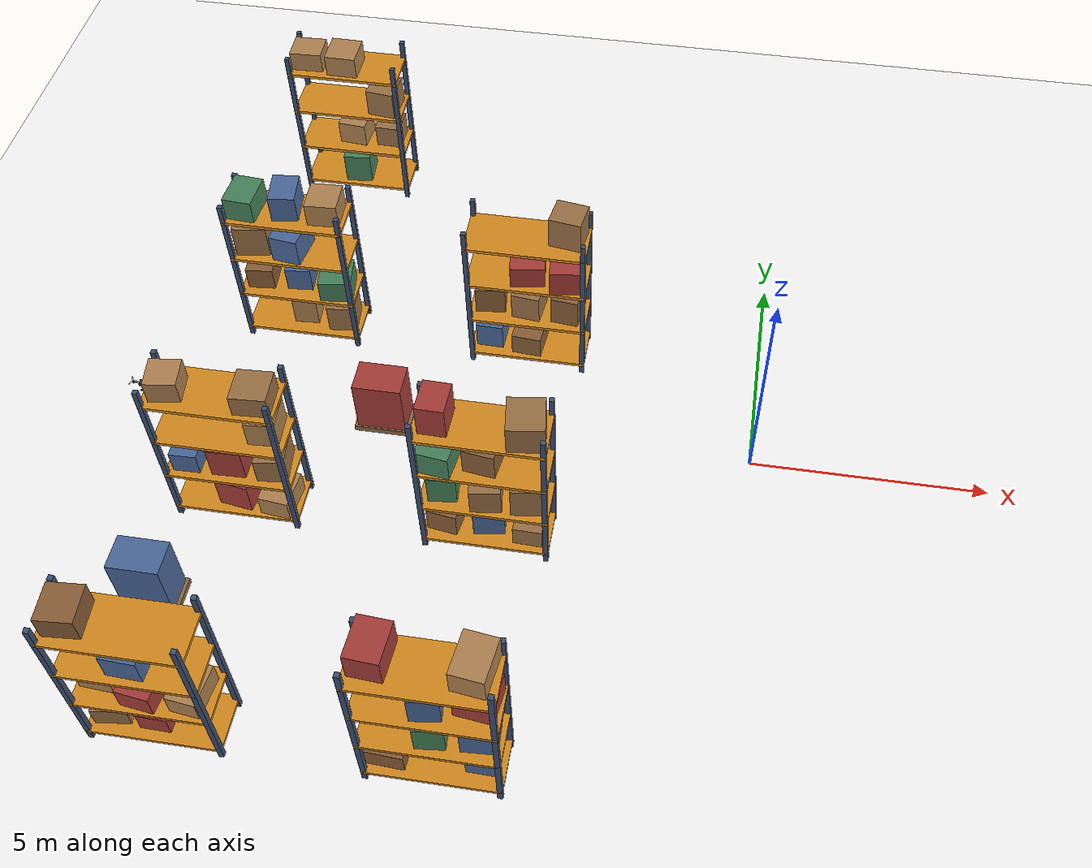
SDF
<sdf version="1.9">
 <world name="warehouse">
  <model name="ground_plane">
   <static>true</static>
   <link name="link">
    <collision name="collision">
     <geometry><plane><normal>0 0 1</normal><size>200 200</size></plane></geometry>
     <surface><friction><ode><mu>1.0</mu><mu2>1.0</mu2></ode></friction></surface>
    </collision>
    <visual name="visual">
     <geometry><plane><normal>0 0 1</normal><size>200 200</size></plane></geometry>
     <material>
      <ambient>0.5 0.5 0.5 1</ambient>
      <diffuse>1 1 1 1</diffuse>
      <pbr>
       <metal>
        <albedo_map>model://surfaces/materials/textures/floor.png</albedo_map>
        <metalness>0</metalness>
        <roughness>0.9</roughness>
       </metal>
      </pbr>
     </material>
    </visual>
   </link>
  </model>
  <model name="rack_0_0">
   <static>true</static>
   <pose>-10.4 -7.5 0 0 0 0</pose>
   <link name="link">
    <visual name="upright_0_v">
     <pose>-1.25 -0.5 2 0 0 0</pose>
     <geometry><box><size>0.1 0.1 4</size></box></geometry>
     <material><ambient>0.125 0.16 0.225 1</ambient><diffuse>0.25 0.32 0.45 1</diffuse></material>
    </visual>
    <collision name="upright_0_c">
     <pose>-1.25 -0.5 2 0 0 0</pose>
     <geometry><box><size>0.1 0.1 4</size></box></geometry>
    </collision>
    <visual name="upright_1_v">
     <pose>-1.25 0.5 2 0 0 0</pose>
     <geometry><box><size>0.1 0.1 4</size></box></geometry>
     <material><ambient>0.125 0.16 0.225 1</ambient><diffuse>0.25 0.32 0.45 1</diffuse></material>
    </visual>
    <collision name="upright_1_c">
     <pose>-1.25 0.5 2 0 0 0</pose>
     <geometry><box><size>0.1 0.1 4</size></box></geometry>
    </collision>
    <visual name="upright_2_v">
     <pose>1.25 -0.5 2 0 0 0</pose>
     <geometry><box><size>0.1 0.1 4</size></box></geometry>
     <material><ambient>0.125 0.16 0.225 1</ambient><diffuse>0.25 0.32 0.45 1</diffuse></material>
    </visual>
    <collision name="upright_2_c">
     <pose>1.25 -0.5 2 0 0 0</pose>
     <geometry><box><size>0.1 0.1 4</size></box></geometry>
    </collision>
    <visual name="upright_3_v">
     <pose>1.25 0.5 2 0 0 0</pose>
     <geometry><box><size>0.1 0.1 4</size></box></geometry>
     <material><ambient>0.125 0.16 0.225 1</ambient><diffuse>0.25 0.32 0.45 1</diffuse></material>
    </visual>
    <collision name="upright_3_c">
     <pose>1.25 0.5 2 0 0 0</pose>
     <geometry><box><size>0.1 0.1 4</size></box></geometry>
    </collision>
    <visual name="deck_0_v">
     <pose>0 0 0.25 0 0 0</pose>
     <geometry><box><size>2.6 1.1 0.07</size></box></geometry>
     <material><ambient>0.425 0.275 0.06 1</ambient><diffuse>0.85 0.55 0.12 1</diffuse></material>
    </visual>
    <collision name="deck_0_c">
     <pose>0 0 0.25 0 0 0</pose>
     <geometry><box><size>2.6 1.1 0.07</size></box></geometry>
    </collision>
    <visual name="cargo_0_0_v">
     <pose>-0.8667 0.007176 0.5227 0 0 0.1229</pose>
     <geometry><box><size>0.6802 0.6914 0.4754</size></box></geometry>
     <material><ambient>0.31 0.225 0.14 1</ambient><diffuse>0.62 0.45 0.28 1</diffuse></material>
    </visual>
    <collision name="cargo_0_0_c">
     <pose>-0.8667 0.007176 0.5227 0 0 0.1229</pose>
     <geometry><box><size>0.6802 0.6914 0.4754</size></box></geometry>
    </collision>
    <visual name="cargo_0_1_v">
     <pose>0 -0.01637 0.525 0 0 -0.02264</pose>
     <geometry><box><size>0.5929 0.6602 0.4801</size></box></geometry>
     <material><ambient>0.33 0.12 0.11 1</ambient><diffuse>0.66 0.24 0.22 1</diffuse></material>
    </visual>
    <collision name="cargo_0_1_c">
     <pose>0 -0.01637 0.525 0 0 -0.02264</pose>
     <geometry><box><size>0.5929 0.6602 0.4801</size></box></geometry>
    </collision>
    <visual name="deck_1_v">
     <pose>0 0 1.35 0 0 0</pose>
     <geometry><box><size>2.6 1.1 0.07</size></box></geometry>
     <material><ambient>0.425 0.275 0.06 1</ambient><diffuse>0.85 0.55 0.12 1</diffuse></material>
    </visual>
    <collision name="deck_1_c">
     <pose>0 0 1.35 0 0 0</pose>
     <geometry><box><size>2.6 1.1 0.07</size></box></geometry>
    </collision>
    <visual name="cargo_1_0_v">
     <pose>-0.8667 0.09525 1.679 0 0 -0.06312</pose>
     <geometry><box><size>0.6654 0.6116 0.5888</size></box></geometry>
     <material><ambient>0.35 0.26 0.16 1</ambient><diffuse>0.7 0.52 0.32 1</diffuse></material>
    </visual>
    <collision name="cargo_1_0_c">
     <pose>-0.8667 0.09525 1.679 0 0 -0.06312</pose>
     <geometry><box><size>0.6654 0.6116 0.5888</size></box></geometry>
    </collision>
    <visual name="cargo_1_2_v">
     <pose>0.8667 -0.0383 1.631 0 0 -0.1191</pose>
     <geometry><box><size>0.5789 0.804 0.4912</size></box></geometry>
     <material><ambient>0.35 0.26 0.16 1</ambient><diffuse>0.7 0.52 0.32 1</diffuse></material>
    </visual>
    <collision name="cargo_1_2_c">
     <pose>0.8667 -0.0383 1.631 0 0 -0.1191</pose>
     <geometry><box><size>0.5789 0.804 0.4912</size></box></geometry>
    </collision>
    <visual name="cargo_1_1_v">
     <pose>0 -0.08051 1.643 0 0 -0.1321</pose>
     <geometry><box><size>0.6642 0.778 0.5158</size></box></geometry>
     <material><ambient>0.33 0.12 0.11 1</ambient><diffuse>0.66 0.24 0.22 1</diffuse></material>
    </visual>
    <collision name="cargo_1_1_c">
     <pose>0 -0.08051 1.643 0 0 -0.1321</pose>
     <geometry><box><size>0.6642 0.778 0.5158</size></box></geometry>
    </collision>
    <visual name="deck_2_v">
     <pose>0 0 2.45 0 0 0</pose>
     <geometry><box><size>2.6 1.1 0.07</size></box></geometry>
     <material><ambient>0.425 0.275 0.06 1</ambient><diffuse>0.85 0.55 0.12 1</diffuse></material>
    </visual>
    <collision name="deck_2_c">
     <pose>0 0 2.45 0 0 0</pose>
     <geometry><box><size>2.6 1.1 0.07</size></box></geometry>
    </collision>
    <visual name="cargo_2_1_v">
     <pose>0 -0.03717 2.785 0 0 -0.04153</pose>
     <geometry><box><size>0.6861 0.7464 0.5997</size></box></geometry>
     <material><ambient>0.15 0.21 0.31 1</ambient><diffuse>0.3 0.42 0.62 1</diffuse></material>
    </visual>
    <collision name="cargo_2_1_c">
     <pose>0 -0.03717 2.785 0 0 -0.04153</pose>
     <geometry><box><size>0.6861 0.7464 0.5997</size></box></geometry>
    </collision>
    <visual name="deck_3_v">
     <pose>0 0 3.55 0 0 0</pose>
     <geometry><box><size>2.6 1.1 0.07</size></box></geometry>
     <material><ambient>0.425 0.275 0.06 1</ambient><diffuse>0.85 0.55 0.12 1</diffuse></material>
    </visual>
    <collision name="deck_3_c">
     <pose>0 0 3.55 0 0 0</pose>
     <geometry><box><size>2.6 1.1 0.07</size></box></geometry>
    </collision>
    <visual name="cargo_3_0_v">
     <pose>-0.8667 0.01488 3.853 0 0 0.06883</pose>
     <geometry><box><size>0.6898 0.7313 0.5354</size></box></geometry>
     <material><ambient>0.275 0.19 0.11 1</ambient><diffuse>0.55 0.38 0.22 1</diffuse></material>
    </visual>
    <collision name="cargo_3_0_c">
     <pose>-0.8667 0.01488 3.853 0 0 0.06883</pose>
     <geometry><box><size>0.6898 0.7313 0.5354</size></box></geometry>
    </collision>
   </link>
  </model>
  <model name="rack_0_1">
   <static>true</static>
   <pose>-5.2 -7.5 0 0 0 0</pose>
   <link name="link">
    <visual name="upright_0_v">
     <pose>-1.25 -0.5 2 0 0 0</pose>
     <geometry><box><size>0.1 0.1 4</size></box></geometry>
     <material><ambient>0.125 0.16 0.225 1</ambient><diffuse>0.25 0.32 0.45 1</diffuse></material>
    </visual>
    <collision name="upright_0_c">
     <pose>-1.25 -0.5 2 0 0 0</pose>
     <geometry><box><size>0.1 0.1 4</size></box></geometry>
    </collision>
    <visual name="upright_1_v">
     <pose>-1.25 0.5 2 0 0 0</pose>
     <geometry><box><size>0.1 0.1 4</size></box></geometry>
     <material><ambient>0.125 0.16 0.225 1</ambient><diffuse>0.25 0.32 0.45 1</diffuse></material>
    </visual>
    <collision name="upright_1_c">
     <pose>-1.25 0.5 2 0 0 0</pose>
     <geometry><box><size>0.1 0.1 4</size></box></geometry>
    </collision>
    <visual name="upright_2_v">
     <pose>1.25 -0.5 2 0 0 0</pose>
     <geometry><box><size>0.1 0.1 4</size></box></geometry>
     <material><ambient>0.125 0.16 0.225 1</ambient><diffuse>0.25 0.32 0.45 1</diffuse></material>
    </visual>
    <collision name="upright_2_c">
     <pose>1.25 -0.5 2 0 0 0</pose>
     <geometry><box><size>0.1 0.1 4</size></box></geometry>
    </collision>
    <visual name="upright_3_v">
     <pose>1.25 0.5 2 0 0 0</pose>
     <geometry><box><size>0.1 0.1 4</size></box></geometry>
     <material><ambient>0.125 0.16 0.225 1</ambient><diffuse>0.25 0.32 0.45 1</diffuse></material>
    </visual>
    <collision name="upright_3_c">
     <pose>1.25 0.5 2 0 0 0</pose>
     <geometry><box><size>0.1 0.1 4</size></box></geometry>
    </collision>
    <visual name="deck_0_v">
     <pose>0 0 0.25 0 0 0</pose>
     <geometry><box><size>2.6 1.1 0.07</size></box></geometry>
     <material><ambient>0.425 0.275 0.06 1</ambient><diffuse>0.85 0.55 0.12 1</diffuse></material>
    </visual>
    <collision name="deck_0_c">
     <pose>0 0 0.25 0 0 0</pose>
     <geometry><box><size>2.6 1.1 0.07</size></box></geometry>
    </collision>
    <visual name="cargo_0_2_v">
     <pose>0.8667 0.05143 0.5832 0 0 -0.02349</pose>
     <geometry><box><size>0.5736 0.638 0.5963</size></box></geometry>
     <material><ambient>0.15 0.21 0.31 1</ambient><diffuse>0.3 0.42 0.62 1</diffuse></material>
    </visual>
    <collision name="cargo_0_2_c">
     <pose>0.8667 0.05143 0.5832 0 0 -0.02349</pose>
     <geometry><box><size>0.5736 0.638 0.5963</size></box></geometry>
    </collision>
    <visual name="cargo_0_0_v">
     <pose>-0.8667 0.01162 0.5236 0 0 -0.04796</pose>
     <geometry><box><size>0.7424 0.7973 0.4772</size></box></geometry>
     <material><ambient>0.275 0.19 0.11 1</ambient><diffuse>0.55 0.38 0.22 1</diffuse></material>
    </visual>
    <collision name="cargo_0_0_c">
     <pose>-0.8667 0.01162 0.5236 0 0 -0.04796</pose>
     <geometry><box><size>0.7424 0.7973 0.4772</size></box></geometry>
    </collision>
    <visual name="deck_1_v">
     <pose>0 0 1.35 0 0 0</pose>
     <geometry><box><size>2.6 1.1 0.07</size></box></geometry>
     <material><ambient>0.425 0.275 0.06 1</ambient><diffuse>0.85 0.55 0.12 1</diffuse></material>
    </visual>
    <collision name="deck_1_c">
     <pose>0 0 1.35 0 0 0</pose>
     <geometry><box><size>2.6 1.1 0.07</size></box></geometry>
    </collision>
    <visual name="cargo_1_2_v">
     <pose>0.8667 0.06799 1.69 0 0 0.05911</pose>
     <geometry><box><size>0.666 0.8362 0.6097</size></box></geometry>
     <material><ambient>0.15 0.21 0.31 1</ambient><diffuse>0.3 0.42 0.62 1</diffuse></material>
    </visual>
    <collision name="cargo_1_2_c">
     <pose>0.8667 0.06799 1.69 0 0 0.05911</pose>
     <geometry><box><size>0.666 0.8362 0.6097</size></box></geometry>
    </collision>
    <visual name="cargo_1_1_v">
     <pose>0 -0.03808 1.738 0 0 0.09658</pose>
     <geometry><box><size>0.563 0.7445 0.7059</size></box></geometry>
     <material><ambient>0.14 0.26 0.18 1</ambient><diffuse>0.28 0.52 0.36 1</diffuse></material>
    </visual>
    <collision name="cargo_1_1_c">
     <pose>0 -0.03808 1.738 0 0 0.09658</pose>
     <geometry><box><size>0.563 0.7445 0.7059</size></box></geometry>
    </collision>
    <visual name="deck_2_v">
     <pose>0 0 2.45 0 0 0</pose>
     <geometry><box><size>2.6 1.1 0.07</size></box></geometry>
     <material><ambient>0.425 0.275 0.06 1</ambient><diffuse>0.85 0.55 0.12 1</diffuse></material>
    </visual>
    <collision name="deck_2_c">
     <pose>0 0 2.45 0 0 0</pose>
     <geometry><box><size>2.6 1.1 0.07</size></box></geometry>
    </collision>
    <visual name="cargo_2_2_v">
     <pose>0.8667 0.08813 2.771 0 0 -0.1149</pose>
     <geometry><box><size>0.7274 0.6889 0.5715</size></box></geometry>
     <material><ambient>0.33 0.12 0.11 1</ambient><diffuse>0.66 0.24 0.22 1</diffuse></material>
    </visual>
    <collision name="cargo_2_2_c">
     <pose>0.8667 0.08813 2.771 0 0 -0.1149</pose>
     <geometry><box><size>0.7274 0.6889 0.5715</size></box></geometry>
    </collision>
    <visual name="cargo_2_1_v">
     <pose>0 -0.07413 2.844 0 0 0.125</pose>
     <geometry><box><size>0.5618 0.6619 0.7189</size></box></geometry>
     <material><ambient>0.15 0.21 0.31 1</ambient><diffuse>0.3 0.42 0.62 1</diffuse></material>
    </visual>
    <collision name="cargo_2_1_c">
     <pose>0 -0.07413 2.844 0 0 0.125</pose>
     <geometry><box><size>0.5618 0.6619 0.7189</size></box></geometry>
    </collision>
    <visual name="deck_3_v">
     <pose>0 0 3.55 0 0 0</pose>
     <geometry><box><size>2.6 1.1 0.07</size></box></geometry>
     <material><ambient>0.425 0.275 0.06 1</ambient><diffuse>0.85 0.55 0.12 1</diffuse></material>
    </visual>
    <collision name="deck_3_c">
     <pose>0 0 3.55 0 0 0</pose>
     <geometry><box><size>2.6 1.1 0.07</size></box></geometry>
    </collision>
    <visual name="cargo_3_0_v">
     <pose>-0.8667 0.07668 3.906 0 0 -0.06647</pose>
     <geometry><box><size>0.6398 0.8048 0.6423</size></box></geometry>
     <material><ambient>0.33 0.12 0.11 1</ambient><diffuse>0.66 0.24 0.22 1</diffuse></material>
    </visual>
    <collision name="cargo_3_0_c">
     <pose>-0.8667 0.07668 3.906 0 0 -0.06647</pose>
     <geometry><box><size>0.6398 0.8048 0.6423</size></box></geometry>
    </collision>
    <visual name="cargo_3_2_v">
     <pose>0.8667 0.07684 3.873 0 0 -0.1251</pose>
     <geometry><box><size>0.6331 0.8394 0.5756</size></box></geometry>
     <material><ambient>0.35 0.26 0.16 1</ambient><diffuse>0.7 0.52 0.32 1</diffuse></material>
    </visual>
    <collision name="cargo_3_2_c">
     <pose>0.8667 0.07684 3.873 0 0 -0.1251</pose>
     <geometry><box><size>0.6331 0.8394 0.5756</size></box></geometry>
    </collision>
   </link>
  </model>
  <model name="rack_1_0">
   <static>true</static>
   <pose>-10.4 -2.5 0 0 0 0</pose>
   <link name="link">
    <visual name="upright_0_v">
     <pose>-1.25 -0.5 2 0 0 0</pose>
     <geometry><box><size>0.1 0.1 4</size></box></geometry>
     <material><ambient>0.125 0.16 0.225 1</ambient><diffuse>0.25 0.32 0.45 1</diffuse></material>
    </visual>
    <collision name="upright_0_c">
     <pose>-1.25 -0.5 2 0 0 0</pose>
     <geometry><box><size>0.1 0.1 4</size></box></geometry>
    </collision>
    <visual name="upright_1_v">
     <pose>-1.25 0.5 2 0 0 0</pose>
     <geometry><box><size>0.1 0.1 4</size></box></geometry>
     <material><ambient>0.125 0.16 0.225 1</ambient><diffuse>0.25 0.32 0.45 1</diffuse></material>
    </visual>
    <collision name="upright_1_c">
     <pose>-1.25 0.5 2 0 0 0</pose>
     <geometry><box><size>0.1 0.1 4</size></box></geometry>
    </collision>
    <visual name="upright_2_v">
     <pose>1.25 -0.5 2 0 0 0</pose>
     <geometry><box><size>0.1 0.1 4</size></box></geometry>
     <material><ambient>0.125 0.16 0.225 1</ambient><diffuse>0.25 0.32 0.45 1</diffuse></material>
    </visual>
    <collision name="upright_2_c">
     <pose>1.25 -0.5 2 0 0 0</pose>
     <geometry><box><size>0.1 0.1 4</size></box></geometry>
    </collision>
    <visual name="upright_3_v">
     <pose>1.25 0.5 2 0 0 0</pose>
     <geometry><box><size>0.1 0.1 4</size></box></geometry>
     <material><ambient>0.125 0.16 0.225 1</ambient><diffuse>0.25 0.32 0.45 1</diffuse></material>
    </visual>
    <collision name="upright_3_c">
     <pose>1.25 0.5 2 0 0 0</pose>
     <geometry><box><size>0.1 0.1 4</size></box></geometry>
    </collision>
    <visual name="deck_0_v">
     <pose>0 0 0.25 0 0 0</pose>
     <geometry><box><size>2.6 1.1 0.07</size></box></geometry>
     <material><ambient>0.425 0.275 0.06 1</ambient><diffuse>0.85 0.55 0.12 1</diffuse></material>
    </visual>
    <collision name="deck_0_c">
     <pose>0 0 0.25 0 0 0</pose>
     <geometry><box><size>2.6 1.1 0.07</size></box></geometry>
    </collision>
    <visual name="cargo_0_1_v">
     <pose>0 -0.07385 0.6637 0 0 -0.1444</pose>
     <geometry><box><size>0.7154 0.638 0.7574</size></box></geometry>
     <material><ambient>0.33 0.12 0.11 1</ambient><diffuse>0.66 0.24 0.22 1</diffuse></material>
    </visual>
    <collision name="cargo_0_1_c">
     <pose>0 -0.07385 0.6637 0 0 -0.1444</pose>
     <geometry><box><size>0.7154 0.638 0.7574</size></box></geometry>
    </collision>
    <visual name="cargo_0_2_v">
     <pose>0.8667 -0.09921 0.542 0 0 -0.1075</pose>
     <geometry><box><size>0.638 0.7998 0.5141</size></box></geometry>
     <material><ambient>0.35 0.26 0.16 1</ambient><diffuse>0.7 0.52 0.32 1</diffuse></material>
    </visual>
    <collision name="cargo_0_2_c">
     <pose>0.8667 -0.09921 0.542 0 0 -0.1075</pose>
     <geometry><box><size>0.638 0.7998 0.5141</size></box></geometry>
    </collision>
    <visual name="deck_1_v">
     <pose>0 0 1.35 0 0 0</pose>
     <geometry><box><size>2.6 1.1 0.07</size></box></geometry>
     <material><ambient>0.425 0.275 0.06 1</ambient><diffuse>0.85 0.55 0.12 1</diffuse></material>
    </visual>
    <collision name="deck_1_c">
     <pose>0 0 1.35 0 0 0</pose>
     <geometry><box><size>2.6 1.1 0.07</size></box></geometry>
    </collision>
    <visual name="cargo_1_2_v">
     <pose>0.8667 0.01109 1.701 0 0 0.115</pose>
     <geometry><box><size>0.6152 0.7961 0.6314</size></box></geometry>
     <material><ambient>0.31 0.225 0.14 1</ambient><diffuse>0.62 0.45 0.28 1</diffuse></material>
    </visual>
    <collision name="cargo_1_2_c">
     <pose>0.8667 0.01109 1.701 0 0 0.115</pose>
     <geometry><box><size>0.6152 0.7961 0.6314</size></box></geometry>
    </collision>
    <visual name="cargo_1_0_v">
     <pose>-0.8667 -0.09156 1.643 0 0 0.01852</pose>
     <geometry><box><size>0.5614 0.6244 0.517</size></box></geometry>
     <material><ambient>0.15 0.21 0.31 1</ambient><diffuse>0.3 0.42 0.62 1</diffuse></material>
    </visual>
    <collision name="cargo_1_0_c">
     <pose>-0.8667 -0.09156 1.643 0 0 0.01852</pose>
     <geometry><box><size>0.5614 0.6244 0.517</size></box></geometry>
    </collision>
    <visual name="cargo_1_1_v">
     <pose>0 -0.01135 1.77 0 0 0.03184</pose>
     <geometry><box><size>0.702 0.7531 0.7694</size></box></geometry>
     <material><ambient>0.33 0.12 0.11 1</ambient><diffuse>0.66 0.24 0.22 1</diffuse></material>
    </visual>
    <collision name="cargo_1_1_c">
     <pose>0 -0.01135 1.77 0 0 0.03184</pose>
     <geometry><box><size>0.702 0.7531 0.7694</size></box></geometry>
    </collision>
    <visual name="deck_2_v">
     <pose>0 0 2.45 0 0 0</pose>
     <geometry><box><size>2.6 1.1 0.07</size></box></geometry>
     <material><ambient>0.425 0.275 0.06 1</ambient><diffuse>0.85 0.55 0.12 1</diffuse></material>
    </visual>
    <collision name="deck_2_c">
     <pose>0 0 2.45 0 0 0</pose>
     <geometry><box><size>2.6 1.1 0.07</size></box></geometry>
    </collision>
    <visual name="cargo_2_2_v">
     <pose>0.8667 0.06147 2.799 0 0 0.05977</pose>
     <geometry><box><size>0.6054 0.7269 0.6279</size></box></geometry>
     <material><ambient>0.35 0.26 0.16 1</ambient><diffuse>0.7 0.52 0.32 1</diffuse></material>
    </visual>
    <collision name="cargo_2_2_c">
     <pose>0.8667 0.06147 2.799 0 0 0.05977</pose>
     <geometry><box><size>0.6054 0.7269 0.6279</size></box></geometry>
    </collision>
    <visual name="deck_3_v">
     <pose>0 0 3.55 0 0 0</pose>
     <geometry><box><size>2.6 1.1 0.07</size></box></geometry>
     <material><ambient>0.425 0.275 0.06 1</ambient><diffuse>0.85 0.55 0.12 1</diffuse></material>
    </visual>
    <collision name="deck_3_c">
     <pose>0 0 3.55 0 0 0</pose>
     <geometry><box><size>2.6 1.1 0.07</size></box></geometry>
    </collision>
    <visual name="cargo_3_2_v">
     <pose>0.8667 -0.07568 3.834 0 0 0.05135</pose>
     <geometry><box><size>0.718 0.7105 0.498</size></box></geometry>
     <material><ambient>0.31 0.225 0.14 1</ambient><diffuse>0.62 0.45 0.28 1</diffuse></material>
    </visual>
    <collision name="cargo_3_2_c">
     <pose>0.8667 -0.07568 3.834 0 0 0.05135</pose>
     <geometry><box><size>0.718 0.7105 0.498</size></box></geometry>
    </collision>
    <visual name="cargo_3_0_v">
     <pose>-0.8667 -0.03944 3.847 0 0 0.1319</pose>
     <geometry><box><size>0.6357 0.6306 0.5244</size></box></geometry>
     <material><ambient>0.35 0.26 0.16 1</ambient><diffuse>0.7 0.52 0.32 1</diffuse></material>
    </visual>
    <collision name="cargo_3_0_c">
     <pose>-0.8667 -0.03944 3.847 0 0 0.1319</pose>
     <geometry><box><size>0.6357 0.6306 0.5244</size></box></geometry>
    </collision>
   </link>
  </model>
  <model name="rack_1_1">
   <static>true</static>
   <pose>-5.2 -2.5 0 0 0 0</pose>
   <link name="link">
    <visual name="upright_0_v">
     <pose>-1.25 -0.5 2 0 0 0</pose>
     <geometry><box><size>0.1 0.1 4</size></box></geometry>
     <material><ambient>0.125 0.16 0.225 1</ambient><diffuse>0.25 0.32 0.45 1</diffuse></material>
    </visual>
    <collision name="upright_0_c">
     <pose>-1.25 -0.5 2 0 0 0</pose>
     <geometry><box><size>0.1 0.1 4</size></box></geometry>
    </collision>
    <visual name="upright_1_v">
     <pose>-1.25 0.5 2 0 0 0</pose>
     <geometry><box><size>0.1 0.1 4</size></box></geometry>
     <material><ambient>0.125 0.16 0.225 1</ambient><diffuse>0.25 0.32 0.45 1</diffuse></material>
    </visual>
    <collision name="upright_1_c">
     <pose>-1.25 0.5 2 0 0 0</pose>
     <geometry><box><size>0.1 0.1 4</size></box></geometry>
    </collision>
    <visual name="upright_2_v">
     <pose>1.25 -0.5 2 0 0 0</pose>
     <geometry><box><size>0.1 0.1 4</size></box></geometry>
     <material><ambient>0.125 0.16 0.225 1</ambient><diffuse>0.25 0.32 0.45 1</diffuse></material>
    </visual>
    <collision name="upright_2_c">
     <pose>1.25 -0.5 2 0 0 0</pose>
     <geometry><box><size>0.1 0.1 4</size></box></geometry>
    </collision>
    <visual name="upright_3_v">
     <pose>1.25 0.5 2 0 0 0</pose>
     <geometry><box><size>0.1 0.1 4</size></box></geometry>
     <material><ambient>0.125 0.16 0.225 1</ambient><diffuse>0.25 0.32 0.45 1</diffuse></material>
    </visual>
    <collision name="upright_3_c">
     <pose>1.25 0.5 2 0 0 0</pose>
     <geometry><box><size>0.1 0.1 4</size></box></geometry>
    </collision>
    <visual name="deck_0_v">
     <pose>0 0 0.25 0 0 0</pose>
     <geometry><box><size>2.6 1.1 0.07</size></box></geometry>
     <material><ambient>0.425 0.275 0.06 1</ambient><diffuse>0.85 0.55 0.12 1</diffuse></material>
    </visual>
    <collision name="deck_0_c">
     <pose>0 0 0.25 0 0 0</pose>
     <geometry><box><size>2.6 1.1 0.07</size></box></geometry>
    </collision>
    <visual name="cargo_0_2_v">
     <pose>0.8667 -0.006453 0.534 0 0 -0.03052</pose>
     <geometry><box><size>0.6006 0.7867 0.498</size></box></geometry>
     <material><ambient>0.31 0.225 0.14 1</ambient><diffuse>0.62 0.45 0.28 1</diffuse></material>
    </visual>
    <collision name="cargo_0_2_c">
     <pose>0.8667 -0.006453 0.534 0 0 -0.03052</pose>
     <geometry><box><size>0.6006 0.7867 0.498</size></box></geometry>
    </collision>
    <visual name="cargo_0_1_v">
     <pose>0 0.06649 0.6832 0 0 0.1482</pose>
     <geometry><box><size>0.6475 0.6404 0.7965</size></box></geometry>
     <material><ambient>0.15 0.21 0.31 1</ambient><diffuse>0.3 0.42 0.62 1</diffuse></material>
    </visual>
    <collision name="cargo_0_1_c">
     <pose>0 0.06649 0.6832 0 0 0.1482</pose>
     <geometry><box><size>0.6475 0.6404 0.7965</size></box></geometry>
    </collision>
    <visual name="cargo_0_0_v">
     <pose>-0.8667 -0.02868 0.5837 0 0 -0.1442</pose>
     <geometry><box><size>0.6308 0.623 0.5974</size></box></geometry>
     <material><ambient>0.275 0.19 0.11 1</ambient><diffuse>0.55 0.38 0.22 1</diffuse></material>
    </visual>
    <collision name="cargo_0_0_c">
     <pose>-0.8667 -0.02868 0.5837 0 0 -0.1442</pose>
     <geometry><box><size>0.6308 0.623 0.5974</size></box></geometry>
    </collision>
    <visual name="deck_1_v">
     <pose>0 0 1.35 0 0 0</pose>
     <geometry><box><size>2.6 1.1 0.07</size></box></geometry>
     <material><ambient>0.425 0.275 0.06 1</ambient><diffuse>0.85 0.55 0.12 1</diffuse></material>
    </visual>
    <collision name="deck_1_c">
     <pose>0 0 1.35 0 0 0</pose>
     <geometry><box><size>2.6 1.1 0.07</size></box></geometry>
    </collision>
    <visual name="cargo_1_1_v">
     <pose>0 -0.04091 1.701 0 0 0.1455</pose>
     <geometry><box><size>0.6269 0.8402 0.6311</size></box></geometry>
     <material><ambient>0.31 0.225 0.14 1</ambient><diffuse>0.62 0.45 0.28 1</diffuse></material>
    </visual>
    <collision name="cargo_1_1_c">
     <pose>0 -0.04091 1.701 0 0 0.1455</pose>
     <geometry><box><size>0.6269 0.8402 0.6311</size></box></geometry>
    </collision>
    <visual name="cargo_1_2_v">
     <pose>0.8667 -0.07904 1.78 0 0 0.1218</pose>
     <geometry><box><size>0.7077 0.6664 0.7901</size></box></geometry>
     <material><ambient>0.31 0.225 0.14 1</ambient><diffuse>0.62 0.45 0.28 1</diffuse></material>
    </visual>
    <collision name="cargo_1_2_c">
     <pose>0.8667 -0.07904 1.78 0 0 0.1218</pose>
     <geometry><box><size>0.7077 0.6664 0.7901</size></box></geometry>
    </collision>
    <visual name="cargo_1_0_v">
     <pose>-0.8667 0.06396 1.742 0 0 0.09569</pose>
     <geometry><box><size>0.5863 0.8124 0.7145</size></box></geometry>
     <material><ambient>0.14 0.26 0.18 1</ambient><diffuse>0.28 0.52 0.36 1</diffuse></material>
    </visual>
    <collision name="cargo_1_0_c">
     <pose>-0.8667 0.06396 1.742 0 0 0.09569</pose>
     <geometry><box><size>0.5863 0.8124 0.7145</size></box></geometry>
    </collision>
    <visual name="deck_2_v">
     <pose>0 0 2.45 0 0 0</pose>
     <geometry><box><size>2.6 1.1 0.07</size></box></geometry>
     <material><ambient>0.425 0.275 0.06 1</ambient><diffuse>0.85 0.55 0.12 1</diffuse></material>
    </visual>
    <collision name="deck_2_c">
     <pose>0 0 2.45 0 0 0</pose>
     <geometry><box><size>2.6 1.1 0.07</size></box></geometry>
    </collision>
    <visual name="cargo_2_1_v">
     <pose>0 -0.001078 2.8 0 0 -0.1327</pose>
     <geometry><box><size>0.6573 0.6818 0.6302</size></box></geometry>
     <material><ambient>0.275 0.19 0.11 1</ambient><diffuse>0.55 0.38 0.22 1</diffuse></material>
    </visual>
    <collision name="cargo_2_1_c">
     <pose>0 -0.001078 2.8 0 0 -0.1327</pose>
     <geometry><box><size>0.6573 0.6818 0.6302</size></box></geometry>
    </collision>
    <visual name="cargo_2_0_v">
     <pose>-0.8667 -0.08552 2.784 0 0 -0.1234</pose>
     <geometry><box><size>0.6876 0.8346 0.5989</size></box></geometry>
     <material><ambient>0.14 0.26 0.18 1</ambient><diffuse>0.28 0.52 0.36 1</diffuse></material>
    </visual>
    <collision name="cargo_2_0_c">
     <pose>-0.8667 -0.08552 2.784 0 0 -0.1234</pose>
     <geometry><box><size>0.6876 0.8346 0.5989</size></box></geometry>
    </collision>
    <visual name="deck_3_v">
     <pose>0 0 3.55 0 0 0</pose>
     <geometry><box><size>2.6 1.1 0.07</size></box></geometry>
     <material><ambient>0.425 0.275 0.06 1</ambient><diffuse>0.85 0.55 0.12 1</diffuse></material>
    </visual>
    <collision name="deck_3_c">
     <pose>0 0 3.55 0 0 0</pose>
     <geometry><box><size>2.6 1.1 0.07</size></box></geometry>
    </collision>
    <visual name="cargo_3_0_v">
     <pose>-0.8667 -0.009245 3.961 0 0 -0.02467</pose>
     <geometry><box><size>0.5633 0.6848 0.752</size></box></geometry>
     <material><ambient>0.33 0.12 0.11 1</ambient><diffuse>0.66 0.24 0.22 1</diffuse></material>
    </visual>
    <collision name="cargo_3_0_c">
     <pose>-0.8667 -0.009245 3.961 0 0 -0.02467</pose>
     <geometry><box><size>0.5633 0.6848 0.752</size></box></geometry>
    </collision>
    <visual name="cargo_3_2_v">
     <pose>0.8667 -0.09136 3.919 0 0 0.1408</pose>
     <geometry><box><size>0.7331 0.7774 0.6676</size></box></geometry>
     <material><ambient>0.31 0.225 0.14 1</ambient><diffuse>0.62 0.45 0.28 1</diffuse></material>
    </visual>
    <collision name="cargo_3_2_c">
     <pose>0.8667 -0.09136 3.919 0 0 0.1408</pose>
     <geometry><box><size>0.7331 0.7774 0.6676</size></box></geometry>
    </collision>
   </link>
  </model>
  <model name="rack_2_0">
   <static>true</static>
   <pose>-10.4 2.5 0 0 0 0</pose>
   <link name="link">
    <visual name="upright_0_v">
     <pose>-1.25 -0.5 2 0 0 0</pose>
     <geometry><box><size>0.1 0.1 4</size></box></geometry>
     <material><ambient>0.125 0.16 0.225 1</ambient><diffuse>0.25 0.32 0.45 1</diffuse></material>
    </visual>
    <collision name="upright_0_c">
     <pose>-1.25 -0.5 2 0 0 0</pose>
     <geometry><box><size>0.1 0.1 4</size></box></geometry>
    </collision>
    <visual name="upright_1_v">
     <pose>-1.25 0.5 2 0 0 0</pose>
     <geometry><box><size>0.1 0.1 4</size></box></geometry>
     <material><ambient>0.125 0.16 0.225 1</ambient><diffuse>0.25 0.32 0.45 1</diffuse></material>
    </visual>
    <collision name="upright_1_c">
     <pose>-1.25 0.5 2 0 0 0</pose>
     <geometry><box><size>0.1 0.1 4</size></box></geometry>
    </collision>
    <visual name="upright_2_v">
     <pose>1.25 -0.5 2 0 0 0</pose>
     <geometry><box><size>0.1 0.1 4</size></box></geometry>
     <material><ambient>0.125 0.16 0.225 1</ambient><diffuse>0.25 0.32 0.45 1</diffuse></material>
    </visual>
    <collision name="upright_2_c">
     <pose>1.25 -0.5 2 0 0 0</pose>
     <geometry><box><size>0.1 0.1 4</size></box></geometry>
    </collision>
    <visual name="upright_3_v">
     <pose>1.25 0.5 2 0 0 0</pose>
     <geometry><box><size>0.1 0.1 4</size></box></geometry>
     <material><ambient>0.125 0.16 0.225 1</ambient><diffuse>0.25 0.32 0.45 1</diffuse></material>
    </visual>
    <collision name="upright_3_c">
     <pose>1.25 0.5 2 0 0 0</pose>
     <geometry><box><size>0.1 0.1 4</size></box></geometry>
    </collision>
    <visual name="deck_0_v">
     <pose>0 0 0.25 0 0 0</pose>
     <geometry><box><size>2.6 1.1 0.07</size></box></geometry>
     <material><ambient>0.425 0.275 0.06 1</ambient><diffuse>0.85 0.55 0.12 1</diffuse></material>
    </visual>
    <collision name="deck_0_c">
     <pose>0 0 0.25 0 0 0</pose>
     <geometry><box><size>2.6 1.1 0.07</size></box></geometry>
    </collision>
    <visual name="cargo_0_2_v">
     <pose>0.8667 -0.01676 0.6373 0 0 0.1021</pose>
     <geometry><box><size>0.6311 0.694 0.7045</size></box></geometry>
     <material><ambient>0.31 0.225 0.14 1</ambient><diffuse>0.62 0.45 0.28 1</diffuse></material>
    </visual>
    <collision name="cargo_0_2_c">
     <pose>0.8667 -0.01676 0.6373 0 0 0.1021</pose>
     <geometry><box><size>0.6311 0.694 0.7045</size></box></geometry>
    </collision>
    <visual name="cargo_0_1_v">
     <pose>0 0.06782 0.6414 0 0 0.06391</pose>
     <geometry><box><size>0.5503 0.63 0.7128</size></box></geometry>
     <material><ambient>0.35 0.26 0.16 1</ambient><diffuse>0.7 0.52 0.32 1</diffuse></material>
    </visual>
    <collision name="cargo_0_1_c">
     <pose>0 0.06782 0.6414 0 0 0.06391</pose>
     <geometry><box><size>0.5503 0.63 0.7128</size></box></geometry>
    </collision>
    <visual name="deck_1_v">
     <pose>0 0 1.35 0 0 0</pose>
     <geometry><box><size>2.6 1.1 0.07</size></box></geometry>
     <material><ambient>0.425 0.275 0.06 1</ambient><diffuse>0.85 0.55 0.12 1</diffuse></material>
    </visual>
    <collision name="deck_1_c">
     <pose>0 0 1.35 0 0 0</pose>
     <geometry><box><size>2.6 1.1 0.07</size></box></geometry>
    </collision>
    <visual name="cargo_1_1_v">
     <pose>0 0.07399 1.678 0 0 0.0767</pose>
     <geometry><box><size>0.563 0.6191 0.5866</size></box></geometry>
     <material><ambient>0.15 0.21 0.31 1</ambient><diffuse>0.3 0.42 0.62 1</diffuse></material>
    </visual>
    <collision name="cargo_1_1_c">
     <pose>0 0.07399 1.678 0 0 0.0767</pose>
     <geometry><box><size>0.563 0.6191 0.5866</size></box></geometry>
    </collision>
    <visual name="cargo_1_2_v">
     <pose>0.8667 -0.08968 1.659 0 0 0.1307</pose>
     <geometry><box><size>0.7209 0.7655 0.5482</size></box></geometry>
     <material><ambient>0.14 0.26 0.18 1</ambient><diffuse>0.28 0.52 0.36 1</diffuse></material>
    </visual>
    <collision name="cargo_1_2_c">
     <pose>0.8667 -0.08968 1.659 0 0 0.1307</pose>
     <geometry><box><size>0.7209 0.7655 0.5482</size></box></geometry>
    </collision>
    <visual name="cargo_1_0_v">
     <pose>-0.8667 0.002193 1.657 0 0 0.08554</pose>
     <geometry><box><size>0.5999 0.6475 0.543</size></box></geometry>
     <material><ambient>0.275 0.19 0.11 1</ambient><diffuse>0.55 0.38 0.22 1</diffuse></material>
    </visual>
    <collision name="cargo_1_0_c">
     <pose>-0.8667 0.002193 1.657 0 0 0.08554</pose>
     <geometry><box><size>0.5999 0.6475 0.543</size></box></geometry>
    </collision>
    <visual name="deck_2_v">
     <pose>0 0 2.45 0 0 0</pose>
     <geometry><box><size>2.6 1.1 0.07</size></box></geometry>
     <material><ambient>0.425 0.275 0.06 1</ambient><diffuse>0.85 0.55 0.12 1</diffuse></material>
    </visual>
    <collision name="deck_2_c">
     <pose>0 0 2.45 0 0 0</pose>
     <geometry><box><size>2.6 1.1 0.07</size></box></geometry>
    </collision>
    <visual name="cargo_2_0_v">
     <pose>-0.8667 0.009846 2.875 0 0 0.13</pose>
     <geometry><box><size>0.7327 0.7799 0.7792</size></box></geometry>
     <material><ambient>0.31 0.225 0.14 1</ambient><diffuse>0.62 0.45 0.28 1</diffuse></material>
    </visual>
    <collision name="cargo_2_0_c">
     <pose>-0.8667 0.009846 2.875 0 0 0.13</pose>
     <geometry><box><size>0.7327 0.7799 0.7792</size></box></geometry>
    </collision>
    <visual name="cargo_2_1_v">
     <pose>0 -0.07229 2.818 0 0 -0.1353</pose>
     <geometry><box><size>0.6322 0.8174 0.6652</size></box></geometry>
     <material><ambient>0.15 0.21 0.31 1</ambient><diffuse>0.3 0.42 0.62 1</diffuse></material>
    </visual>
    <collision name="cargo_2_1_c">
     <pose>0 -0.07229 2.818 0 0 -0.1353</pose>
     <geometry><box><size>0.6322 0.8174 0.6652</size></box></geometry>
    </collision>
    <visual name="deck_3_v">
     <pose>0 0 3.55 0 0 0</pose>
     <geometry><box><size>2.6 1.1 0.07</size></box></geometry>
     <material><ambient>0.425 0.275 0.06 1</ambient><diffuse>0.85 0.55 0.12 1</diffuse></material>
    </visual>
    <collision name="deck_3_c">
     <pose>0 0 3.55 0 0 0</pose>
     <geometry><box><size>2.6 1.1 0.07</size></box></geometry>
    </collision>
    <visual name="cargo_3_0_v">
     <pose>-0.8667 -0.04885 3.859 0 0 -0.07195</pose>
     <geometry><box><size>0.633 0.7847 0.5486</size></box></geometry>
     <material><ambient>0.14 0.26 0.18 1</ambient><diffuse>0.28 0.52 0.36 1</diffuse></material>
    </visual>
    <collision name="cargo_3_0_c">
     <pose>-0.8667 -0.04885 3.859 0 0 -0.07195</pose>
     <geometry><box><size>0.633 0.7847 0.5486</size></box></geometry>
    </collision>
    <visual name="cargo_3_2_v">
     <pose>0.8667 0.01146 3.863 0 0 0.04296</pose>
     <geometry><box><size>0.6812 0.6986 0.5553</size></box></geometry>
     <material><ambient>0.35 0.26 0.16 1</ambient><diffuse>0.7 0.52 0.32 1</diffuse></material>
    </visual>
    <collision name="cargo_3_2_c">
     <pose>0.8667 0.01146 3.863 0 0 0.04296</pose>
     <geometry><box><size>0.6812 0.6986 0.5553</size></box></geometry>
    </collision>
    <visual name="cargo_3_1_v">
     <pose>0 0.06237 3.898 0 0 0.1219</pose>
     <geometry><box><size>0.565 0.7376 0.6252</size></box></geometry>
     <material><ambient>0.15 0.21 0.31 1</ambient><diffuse>0.3 0.42 0.62 1</diffuse></material>
    </visual>
    <collision name="cargo_3_1_c">
     <pose>0 0.06237 3.898 0 0 0.1219</pose>
     <geometry><box><size>0.565 0.7376 0.6252</size></box></geometry>
    </collision>
   </link>
  </model>
  <model name="rack_2_1">
   <static>true</static>
   <pose>-5.2 2.5 0 0 0 0</pose>
   <link name="link">
    <visual name="upright_0_v">
     <pose>-1.25 -0.5 2 0 0 0</pose>
     <geometry><box><size>0.1 0.1 4</size></box></geometry>
     <material><ambient>0.125 0.16 0.225 1</ambient><diffuse>0.25 0.32 0.45 1</diffuse></material>
    </visual>
    <collision name="upright_0_c">
     <pose>-1.25 -0.5 2 0 0 0</pose>
     <geometry><box><size>0.1 0.1 4</size></box></geometry>
    </collision>
    <visual name="upright_1_v">
     <pose>-1.25 0.5 2 0 0 0</pose>
     <geometry><box><size>0.1 0.1 4</size></box></geometry>
     <material><ambient>0.125 0.16 0.225 1</ambient><diffuse>0.25 0.32 0.45 1</diffuse></material>
    </visual>
    <collision name="upright_1_c">
     <pose>-1.25 0.5 2 0 0 0</pose>
     <geometry><box><size>0.1 0.1 4</size></box></geometry>
    </collision>
    <visual name="upright_2_v">
     <pose>1.25 -0.5 2 0 0 0</pose>
     <geometry><box><size>0.1 0.1 4</size></box></geometry>
     <material><ambient>0.125 0.16 0.225 1</ambient><diffuse>0.25 0.32 0.45 1</diffuse></material>
    </visual>
    <collision name="upright_2_c">
     <pose>1.25 -0.5 2 0 0 0</pose>
     <geometry><box><size>0.1 0.1 4</size></box></geometry>
    </collision>
    <visual name="upright_3_v">
     <pose>1.25 0.5 2 0 0 0</pose>
     <geometry><box><size>0.1 0.1 4</size></box></geometry>
     <material><ambient>0.125 0.16 0.225 1</ambient><diffuse>0.25 0.32 0.45 1</diffuse></material>
    </visual>
    <collision name="upright_3_c">
     <pose>1.25 0.5 2 0 0 0</pose>
     <geometry><box><size>0.1 0.1 4</size></box></geometry>
    </collision>
    <visual name="deck_0_v">
     <pose>0 0 0.25 0 0 0</pose>
     <geometry><box><size>2.6 1.1 0.07</size></box></geometry>
     <material><ambient>0.425 0.275 0.06 1</ambient><diffuse>0.85 0.55 0.12 1</diffuse></material>
    </visual>
    <collision name="deck_0_c">
     <pose>0 0 0.25 0 0 0</pose>
     <geometry><box><size>2.6 1.1 0.07</size></box></geometry>
    </collision>
    <visual name="cargo_0_1_v">
     <pose>0 -0.06506 0.5527 0 0 -0.07826</pose>
     <geometry><box><size>0.6596 0.739 0.5354</size></box></geometry>
     <material><ambient>0.275 0.19 0.11 1</ambient><diffuse>0.55 0.38 0.22 1</diffuse></material>
    </visual>
    <collision name="cargo_0_1_c">
     <pose>0 -0.06506 0.5527 0 0 -0.07826</pose>
     <geometry><box><size>0.6596 0.739 0.5354</size></box></geometry>
    </collision>
    <visual name="cargo_0_0_v">
     <pose>-0.8667 0.07745 0.6097 0 0 -0.03515</pose>
     <geometry><box><size>0.6017 0.7874 0.6494</size></box></geometry>
     <material><ambient>0.15 0.21 0.31 1</ambient><diffuse>0.3 0.42 0.62 1</diffuse></material>
    </visual>
    <collision name="cargo_0_0_c">
     <pose>-0.8667 0.07745 0.6097 0 0 -0.03515</pose>
     <geometry><box><size>0.6017 0.7874 0.6494</size></box></geometry>
    </collision>
    <visual name="deck_1_v">
     <pose>0 0 1.35 0 0 0</pose>
     <geometry><box><size>2.6 1.1 0.07</size></box></geometry>
     <material><ambient>0.425 0.275 0.06 1</ambient><diffuse>0.85 0.55 0.12 1</diffuse></material>
    </visual>
    <collision name="deck_1_c">
     <pose>0 0 1.35 0 0 0</pose>
     <geometry><box><size>2.6 1.1 0.07</size></box></geometry>
    </collision>
    <visual name="cargo_1_2_v">
     <pose>0.8667 -0.0003708 1.742 0 0 -0.1122</pose>
     <geometry><box><size>0.604 0.7436 0.7132</size></box></geometry>
     <material><ambient>0.275 0.19 0.11 1</ambient><diffuse>0.55 0.38 0.22 1</diffuse></material>
    </visual>
    <collision name="cargo_1_2_c">
     <pose>0.8667 -0.0003708 1.742 0 0 -0.1122</pose>
     <geometry><box><size>0.604 0.7436 0.7132</size></box></geometry>
    </collision>
    <visual name="cargo_1_0_v">
     <pose>-0.8667 0.07257 1.72 0 0 0.119</pose>
     <geometry><box><size>0.6507 0.654 0.6704</size></box></geometry>
     <material><ambient>0.275 0.19 0.11 1</ambient><diffuse>0.55 0.38 0.22 1</diffuse></material>
    </visual>
    <collision name="cargo_1_0_c">
     <pose>-0.8667 0.07257 1.72 0 0 0.119</pose>
     <geometry><box><size>0.6507 0.654 0.6704</size></box></geometry>
    </collision>
    <visual name="cargo_1_1_v">
     <pose>0 -0.01363 1.723 0 0 -0.1118</pose>
     <geometry><box><size>0.6269 0.678 0.676</size></box></geometry>
     <material><ambient>0.31 0.225 0.14 1</ambient><diffuse>0.62 0.45 0.28 1</diffuse></material>
    </visual>
    <collision name="cargo_1_1_c">
     <pose>0 -0.01363 1.723 0 0 -0.1118</pose>
     <geometry><box><size>0.6269 0.678 0.676</size></box></geometry>
    </collision>
    <visual name="deck_2_v">
     <pose>0 0 2.45 0 0 0</pose>
     <geometry><box><size>2.6 1.1 0.07</size></box></geometry>
     <material><ambient>0.425 0.275 0.06 1</ambient><diffuse>0.85 0.55 0.12 1</diffuse></material>
    </visual>
    <collision name="deck_2_c">
     <pose>0 0 2.45 0 0 0</pose>
     <geometry><box><size>2.6 1.1 0.07</size></box></geometry>
    </collision>
    <visual name="cargo_2_2_v">
     <pose>0.8667 -0.08537 2.796 0 0 0.1066</pose>
     <geometry><box><size>0.7437 0.8326 0.6214</size></box></geometry>
     <material><ambient>0.33 0.12 0.11 1</ambient><diffuse>0.66 0.24 0.22 1</diffuse></material>
    </visual>
    <collision name="cargo_2_2_c">
     <pose>0.8667 -0.08537 2.796 0 0 0.1066</pose>
     <geometry><box><size>0.7437 0.8326 0.6214</size></box></geometry>
    </collision>
    <visual name="cargo_2_1_v">
     <pose>0 -0.07819 2.753 0 0 0.1416</pose>
     <geometry><box><size>0.7444 0.6386 0.537</size></box></geometry>
     <material><ambient>0.33 0.12 0.11 1</ambient><diffuse>0.66 0.24 0.22 1</diffuse></material>
    </visual>
    <collision name="cargo_2_1_c">
     <pose>0 -0.07819 2.753 0 0 0.1416</pose>
     <geometry><box><size>0.7444 0.6386 0.537</size></box></geometry>
    </collision>
    <visual name="deck_3_v">
     <pose>0 0 3.55 0 0 0</pose>
     <geometry><box><size>2.6 1.1 0.07</size></box></geometry>
     <material><ambient>0.425 0.275 0.06 1</ambient><diffuse>0.85 0.55 0.12 1</diffuse></material>
    </visual>
    <collision name="deck_3_c">
     <pose>0 0 3.55 0 0 0</pose>
     <geometry><box><size>2.6 1.1 0.07</size></box></geometry>
    </collision>
    <visual name="cargo_3_2_v">
     <pose>0.8667 0.07898 3.958 0 0 -0.1496</pose>
     <geometry><box><size>0.6902 0.6213 0.7463</size></box></geometry>
     <material><ambient>0.31 0.225 0.14 1</ambient><diffuse>0.62 0.45 0.28 1</diffuse></material>
    </visual>
    <collision name="cargo_3_2_c">
     <pose>0.8667 0.07898 3.958 0 0 -0.1496</pose>
     <geometry><box><size>0.6902 0.6213 0.7463</size></box></geometry>
    </collision>
   </link>
  </model>
  <model name="rack_3_0">
   <static>true</static>
   <pose>-10.4 7.5 0 0 0 0</pose>
   <link name="link">
    <visual name="upright_0_v">
     <pose>-1.25 -0.5 2 0 0 0</pose>
     <geometry><box><size>0.1 0.1 4</size></box></geometry>
     <material><ambient>0.125 0.16 0.225 1</ambient><diffuse>0.25 0.32 0.45 1</diffuse></material>
    </visual>
    <collision name="upright_0_c">
     <pose>-1.25 -0.5 2 0 0 0</pose>
     <geometry><box><size>0.1 0.1 4</size></box></geometry>
    </collision>
    <visual name="upright_1_v">
     <pose>-1.25 0.5 2 0 0 0</pose>
     <geometry><box><size>0.1 0.1 4</size></box></geometry>
     <material><ambient>0.125 0.16 0.225 1</ambient><diffuse>0.25 0.32 0.45 1</diffuse></material>
    </visual>
    <collision name="upright_1_c">
     <pose>-1.25 0.5 2 0 0 0</pose>
     <geometry><box><size>0.1 0.1 4</size></box></geometry>
    </collision>
    <visual name="upright_2_v">
     <pose>1.25 -0.5 2 0 0 0</pose>
     <geometry><box><size>0.1 0.1 4</size></box></geometry>
     <material><ambient>0.125 0.16 0.225 1</ambient><diffuse>0.25 0.32 0.45 1</diffuse></material>
    </visual>
    <collision name="upright_2_c">
     <pose>1.25 -0.5 2 0 0 0</pose>
     <geometry><box><size>0.1 0.1 4</size></box></geometry>
    </collision>
    <visual name="upright_3_v">
     <pose>1.25 0.5 2 0 0 0</pose>
     <geometry><box><size>0.1 0.1 4</size></box></geometry>
     <material><ambient>0.125 0.16 0.225 1</ambient><diffuse>0.25 0.32 0.45 1</diffuse></material>
    </visual>
    <collision name="upright_3_c">
     <pose>1.25 0.5 2 0 0 0</pose>
     <geometry><box><size>0.1 0.1 4</size></box></geometry>
    </collision>
    <visual name="deck_0_v">
     <pose>0 0 0.25 0 0 0</pose>
     <geometry><box><size>2.6 1.1 0.07</size></box></geometry>
     <material><ambient>0.425 0.275 0.06 1</ambient><diffuse>0.85 0.55 0.12 1</diffuse></material>
    </visual>
    <collision name="deck_0_c">
     <pose>0 0 0.25 0 0 0</pose>
     <geometry><box><size>2.6 1.1 0.07</size></box></geometry>
    </collision>
    <visual name="cargo_0_1_v">
     <pose>0 -0.05301 0.666 0 0 0.07787</pose>
     <geometry><box><size>0.6422 0.7346 0.7619</size></box></geometry>
     <material><ambient>0.14 0.26 0.18 1</ambient><diffuse>0.28 0.52 0.36 1</diffuse></material>
    </visual>
    <collision name="cargo_0_1_c">
     <pose>0 -0.05301 0.666 0 0 0.07787</pose>
     <geometry><box><size>0.6422 0.7346 0.7619</size></box></geometry>
    </collision>
    <visual name="deck_1_v">
     <pose>0 0 1.35 0 0 0</pose>
     <geometry><box><size>2.6 1.1 0.07</size></box></geometry>
     <material><ambient>0.425 0.275 0.06 1</ambient><diffuse>0.85 0.55 0.12 1</diffuse></material>
    </visual>
    <collision name="deck_1_c">
     <pose>0 0 1.35 0 0 0</pose>
     <geometry><box><size>2.6 1.1 0.07</size></box></geometry>
    </collision>
    <visual name="cargo_1_1_v">
     <pose>0 0.04761 1.675 0 0 -0.09428</pose>
     <geometry><box><size>0.6634 0.6498 0.5805</size></box></geometry>
     <material><ambient>0.35 0.26 0.16 1</ambient><diffuse>0.7 0.52 0.32 1</diffuse></material>
    </visual>
    <collision name="cargo_1_1_c">
     <pose>0 0.04761 1.675 0 0 -0.09428</pose>
     <geometry><box><size>0.6634 0.6498 0.5805</size></box></geometry>
    </collision>
    <visual name="cargo_1_2_v">
     <pose>0.8667 0.08151 1.659 0 0 -0.03118</pose>
     <geometry><box><size>0.5971 0.6471 0.5485</size></box></geometry>
     <material><ambient>0.31 0.225 0.14 1</ambient><diffuse>0.62 0.45 0.28 1</diffuse></material>
    </visual>
    <collision name="cargo_1_2_c">
     <pose>0.8667 0.08151 1.659 0 0 -0.03118</pose>
     <geometry><box><size>0.5971 0.6471 0.5485</size></box></geometry>
    </collision>
    <visual name="deck_2_v">
     <pose>0 0 2.45 0 0 0</pose>
     <geometry><box><size>2.6 1.1 0.07</size></box></geometry>
     <material><ambient>0.425 0.275 0.06 1</ambient><diffuse>0.85 0.55 0.12 1</diffuse></material>
    </visual>
    <collision name="deck_2_c">
     <pose>0 0 2.45 0 0 0</pose>
     <geometry><box><size>2.6 1.1 0.07</size></box></geometry>
    </collision>
    <visual name="cargo_2_2_v">
     <pose>0.8667 -0.07989 2.824 0 0 -0.1193</pose>
     <geometry><box><size>0.6553 0.716 0.6774</size></box></geometry>
     <material><ambient>0.31 0.225 0.14 1</ambient><diffuse>0.62 0.45 0.28 1</diffuse></material>
    </visual>
    <collision name="cargo_2_2_c">
     <pose>0.8667 -0.07989 2.824 0 0 -0.1193</pose>
     <geometry><box><size>0.6553 0.716 0.6774</size></box></geometry>
    </collision>
    <visual name="deck_3_v">
     <pose>0 0 3.55 0 0 0</pose>
     <geometry><box><size>2.6 1.1 0.07</size></box></geometry>
     <material><ambient>0.425 0.275 0.06 1</ambient><diffuse>0.85 0.55 0.12 1</diffuse></material>
    </visual>
    <collision name="deck_3_c">
     <pose>0 0 3.55 0 0 0</pose>
     <geometry><box><size>2.6 1.1 0.07</size></box></geometry>
    </collision>
    <visual name="cargo_3_0_v">
     <pose>-0.8667 -0.04126 3.817 0 0 0.03015</pose>
     <geometry><box><size>0.7329 0.6298 0.4641</size></box></geometry>
     <material><ambient>0.35 0.26 0.16 1</ambient><diffuse>0.7 0.52 0.32 1</diffuse></material>
    </visual>
    <collision name="cargo_3_0_c">
     <pose>-0.8667 -0.04126 3.817 0 0 0.03015</pose>
     <geometry><box><size>0.7329 0.6298 0.4641</size></box></geometry>
    </collision>
    <visual name="cargo_3_1_v">
     <pose>0 -0.08498 3.844 0 0 -0.01527</pose>
     <geometry><box><size>0.7156 0.7282 0.518</size></box></geometry>
     <material><ambient>0.35 0.26 0.16 1</ambient><diffuse>0.7 0.52 0.32 1</diffuse></material>
    </visual>
    <collision name="cargo_3_1_c">
     <pose>0 -0.08498 3.844 0 0 -0.01527</pose>
     <geometry><box><size>0.7156 0.7282 0.518</size></box></geometry>
    </collision>
   </link>
  </model>
  <model name="pallet_stack_0">
   <static>true</static>
   <pose>-8 0 0 0 0 0</pose>
   <link name="link">
    <visual name="pallet_v">
     <pose>0 0 0.07 0 0 0</pose>
     <geometry><box><size>1.2 0.8 0.14</size></box></geometry>
     <material><ambient>0.275 0.21 0.13 1</ambient><diffuse>0.55 0.42 0.26 1</diffuse></material>
    </visual>
    <collision name="pallet_c">
     <pose>0 0 0.07 0 0 0</pose>
     <geometry><box><size>1.2 0.8 0.14</size></box></geometry>
    </collision>
    <visual name="load_v">
     <pose>0 0 0.7943 0 0 0</pose>
     <geometry><box><size>1.05 0.72 1.309</size></box></geometry>
     <material><ambient>0.33 0.12 0.11 1</ambient><diffuse>0.66 0.24 0.22 1</diffuse></material>
    </visual>
    <collision name="load_c">
     <pose>0 0 0.7943 0 0 0</pose>
     <geometry><box><size>1.05 0.72 1.309</size></box></geometry>
    </collision>
   </link>
  </model>
  <model name="pallet_stack_5">
   <static>true</static>
   <pose>-11.5 -5 0 0 0 0</pose>
   <link name="link">
    <visual name="pallet_v">
     <pose>0 0 0.07 0 0 0</pose>
     <geometry><box><size>1.2 0.8 0.14</size></box></geometry>
     <material><ambient>0.275 0.21 0.13 1</ambient><diffuse>0.55 0.42 0.26 1</diffuse></material>
    </visual>
    <collision name="pallet_c">
     <pose>0 0 0.07 0 0 0</pose>
     <geometry><box><size>1.2 0.8 0.14</size></box></geometry>
    </collision>
    <visual name="load_v">
     <pose>0 0 0.8376 0 0 0</pose>
     <geometry><box><size>1.05 0.72 1.395</size></box></geometry>
     <material><ambient>0.15 0.21 0.31 1</ambient><diffuse>0.3 0.42 0.62 1</diffuse></material>
    </visual>
    <collision name="load_c">
     <pose>0 0 0.8376 0 0 0</pose>
     <geometry><box><size>1.05 0.72 1.395</size></box></geometry>
    </collision>
   </link>
  </model>
  <include><uri>model://tricopter</uri><name>tricopter</name><pose>-13.5 0 0.2 0 0 0</pose></include>
  <include><uri>model://wearer</uri><name>wearer</name><pose>-14.5 0 1.7 0 0 0</pose></include>
 </world>
</sdf>
